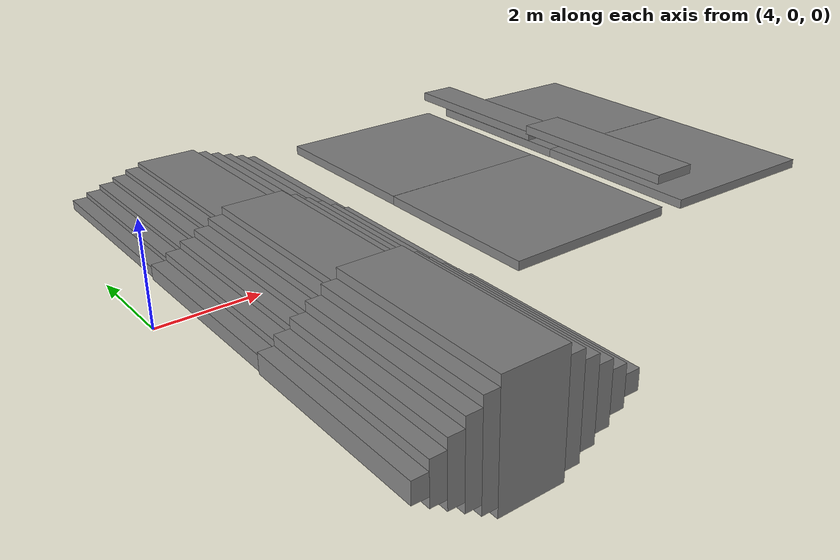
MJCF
<mujoco model="stair">
  <statistic center="1.0 0.7 1.0" extent="0.8"/>

  <worldbody>
    <geom pos="5.0 4.0 0" type="box"  size="0.15 2 0.1"/>
    <geom pos="5.3 4.0 0" type="box"  size="0.15 2 0.2"/>
    <geom pos="5.6 4.0 0" type="box"  size="0.15 2 0.3"/>
    <geom pos="5.9 4.0 0" type="box"  size="0.15 2 0.4"/>
    <geom pos="6.2 4.0 0" type="box"  size="0.15 2 0.5"/>
    <geom pos="7.0 4.0 0" type="box"  size="0.65 2 0.6"/>
    <geom pos="7.8 4.0 0" type="box"  size="0.15 2 0.5"/>
    <geom pos="8.1 4.0 0" type="box"  size="0.15 2 0.4"/>
    <geom pos="8.4 4.0 0" type="box"  size="0.15 2 0.3"/>
    <geom pos="8.7 4.0 0" type="box"  size="0.15 2 0.2"/>
    <geom pos="9.0 4.0 0" type="box"  size="0.15 2 0.1"/>

    <geom pos="12.3 0.0 0.00" type="box"  size="2.00 2 0.1" euler="0 -0.4 0"/>
    <geom pos="14.6 0.0 0.77" type="box"  size="0.50 2 0.1" euler="0  0.0 0"/>
    <geom pos="16.9 0.0 0.00" type="box"  size="2.00 2 0.1" euler="0  0.4 0"/>

    <geom pos="12.3 4.0 0.00" type="box"  size="2.00 2 0.1" euler="0 -0.3 0"/>
    <geom pos="14.6 4.0 0.59" type="box"  size="0.42 2 0.1" euler="0  0.0 0"/>
    <geom pos="16.9 4.0 0.00" type="box"  size="2.00 2 0.1" euler="0  0.3 0"/>

    <geom pos="5.0 0.0 0" type="box"  size="0.15 2 0.15"/>
    <geom pos="5.3 0.0 0" type="box"  size="0.15 2 0.30"/>
    <geom pos="5.6 0.0 0" type="box"  size="0.15 2 0.45"/>
    <geom pos="5.9 0.0 0" type="box"  size="0.15 2 0.60"/>
    <geom pos="6.2 0.0 0" type="box"  size="0.15 2 0.75"/>
    <geom pos="7.0 0.0 0" type="box"  size="0.65 2 0.90"/>
    <geom pos="7.8 0.0 0" type="box"  size="0.15 2 0.75"/>
    <geom pos="8.1 0.0 0" type="box"  size="0.15 2 0.60"/>
    <geom pos="8.4 0.0 0" type="box"  size="0.15 2 0.45"/>
    <geom pos="8.7 0.0 0" type="box"  size="0.15 2 0.30"/>
    <geom pos="9.0 0.0 0" type="box"  size="0.15 2 0.15"/>

    <geom pos="5.0 -4.0 0" type="box"  size="0.15 2 0.2"/>
    <geom pos="5.3 -4.0 0" type="box"  size="0.15 2 0.4"/>
    <geom pos="5.6 -4.0 0" type="box"  size="0.15 2 0.6"/>
    <geom pos="5.9 -4.0 0" type="box"  size="0.15 2 0.8"/>
    <geom pos="6.2 -4.0 0" type="box"  size="0.15 2 1.0"/>
    <geom pos="7.0 -4.0 0" type="box"  size="0.65 2 1.2"/>
    <geom pos="7.8 -4.0 0" type="box"  size="0.15 2 1.0"/>
    <geom pos="8.1 -4.0 0" type="box"  size="0.15 2 0.8"/>
    <geom pos="8.4 -4.0 0" type="box"  size="0.15 2 0.6"/>
    <geom pos="8.7 -4.0 0" type="box"  size="0.15 2 0.4"/>
    <geom pos="9.0 -4.0 0" type="box"  size="0.15 2 0.2"/>
  </worldbody>
</mujoco>
